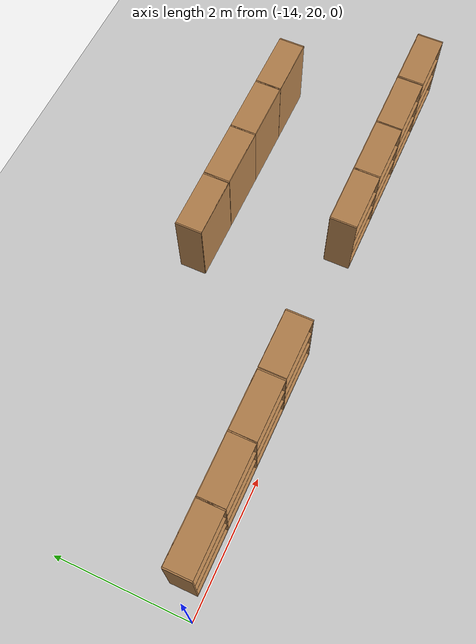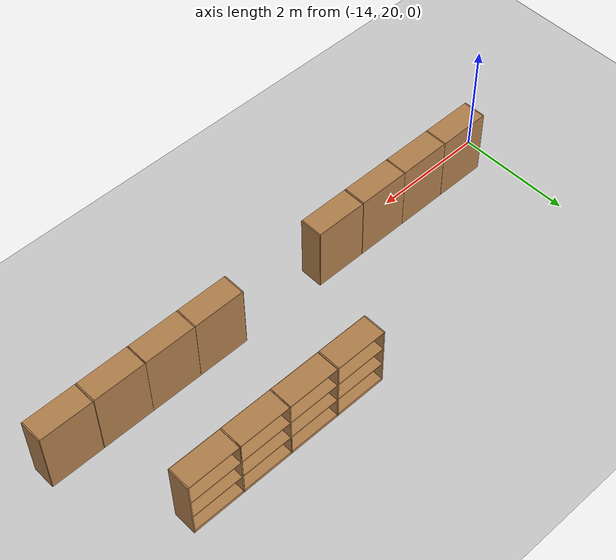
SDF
<sdf version="1.6">
 <world name="default">
  <model name="ground_plane">
   <static>1</static>
   <link name="link">
    <collision name="collision">
     <geometry><plane><normal>0 0 1</normal><size>100 100</size></plane></geometry>
     <surface><friction><ode><mu>100</mu><mu2>50</mu2></ode></friction></surface>
    </collision>
    <visual name="visual">
     <cast_shadows>0</cast_shadows>
     <geometry><plane><normal>0 0 1</normal><size>100 100</size></plane></geometry>
     <material>
      <script><uri>file://media/materials/scripts/gazebo.material</uri><name>Gazebo/Grey</name></script>
     </material>
    </visual>
   </link>
  </model>
  <model name="Bookself-4_clone">
   <model name="Bookself-3">
    <model name="bookshelf_0">
     <static>1</static>
     <link name="link">
      <inertial><mass>1</mass></inertial>
      <collision name="back">
       <pose>0 0.005 0.6 0 -0 0</pose>
       <geometry><box><size>0.9 0.01 1.2</size></box></geometry>
      </collision>
      <visual name="visual1">
       <pose>0 0.005 0.6 0 -0 0</pose>
       <geometry><box><size>0.9 0.01 1.2</size></box></geometry>
       <material>
        <script><uri>file://media/materials/scripts/gazebo.material</uri><name>Gazebo/Wood</name></script>
       </material>
      </visual>
      <collision name="left_side">
       <pose>0.45 -0.195 0.6 0 -0 0</pose>
       <geometry><box><size>0.02 0.4 1.2</size></box></geometry>
      </collision>
      <visual name="visual2">
       <pose>0.45 -0.195 0.6 0 -0 0</pose>
       <geometry><box><size>0.02 0.4 1.2</size></box></geometry>
       <material>
        <script><uri>file://media/materials/scripts/gazebo.material</uri><name>Gazebo/Wood</name></script>
       </material>
      </visual>
      <collision name="right_side">
       <pose>-0.45 -0.195 0.6 0 -0 0</pose>
       <geometry><box><size>0.02 0.4 1.2</size></box></geometry>
      </collision>
      <visual name="visual3">
       <pose>-0.45 -0.195 0.6 0 -0 0</pose>
       <geometry><box><size>0.02 0.4 1.2</size></box></geometry>
       <material>
        <script><uri>file://media/materials/scripts/gazebo.material</uri><name>Gazebo/Wood</name></script>
       </material>
      </visual>
      <collision name="bottom">
       <pose>0 -0.195 0.03 0 -0 0</pose>
       <geometry><box><size>0.88 0.4 0.06</size></box></geometry>
      </collision>
      <visual name="visual4">
       <pose>0 -0.195 0.03 0 -0 0</pose>
       <geometry><box><size>0.88 0.4 0.06</size></box></geometry>
       <material>
        <script><uri>file://media/materials/scripts/gazebo.material</uri><name>Gazebo/Wood</name></script>
       </material>
      </visual>
      <collision name="top">
       <pose>0 -0.195 1.19 0 -0 0</pose>
       <geometry><box><size>0.88 0.4 0.02</size></box></geometry>
      </collision>
      <visual name="visual5">
       <pose>0 -0.195 1.19 0 -0 0</pose>
       <geometry><box><size>0.88 0.4 0.02</size></box></geometry>
       <material>
        <script><uri>file://media/materials/scripts/gazebo.material</uri><name>Gazebo/Wood</name></script>
       </material>
      </visual>
      <collision name="low_shelf">
       <pose>0 -0.195 0.43 0 -0 0</pose>
       <geometry><box><size>0.88 0.4 0.02</size></box></geometry>
      </collision>
      <visual name="visual6">
       <pose>0 -0.195 0.43 0 -0 0</pose>
       <geometry><box><size>0.88 0.4 0.02</size></box></geometry>
       <material>
        <script><uri>file://media/materials/scripts/gazebo.material</uri><name>Gazebo/Wood</name></script>
       </material>
      </visual>
      <collision name="high_shelf">
       <pose>0 -0.195 0.8 0 -0 0</pose>
       <geometry><box><size>0.88 0.4 0.02</size></box></geometry>
      </collision>
      <visual name="visual7">
       <pose>0 -0.195 0.8 0 -0 0</pose>
       <geometry><box><size>0.88 0.4 0.02</size></box></geometry>
       <material>
        <script><uri>file://media/materials/scripts/gazebo.material</uri><name>Gazebo/Wood</name></script>
       </material>
      </visual>
     </link>
     <pose>-0.903039 0 0 0 -0 0</pose>
    </model>
    <model name="bookshelf_1">
     <static>1</static>
     <link name="link">
      <inertial><mass>1</mass></inertial>
      <collision name="back">
       <pose>0 0.005 0.6 0 -0 0</pose>
       <geometry><box><size>0.9 0.01 1.2</size></box></geometry>
      </collision>
      <visual name="visual1">
       <pose>0 0.005 0.6 0 -0 0</pose>
       <geometry><box><size>0.9 0.01 1.2</size></box></geometry>
       <material>
        <script><uri>file://media/materials/scripts/gazebo.material</uri><name>Gazebo/Wood</name></script>
       </material>
      </visual>
      <collision name="left_side">
       <pose>0.45 -0.195 0.6 0 -0 0</pose>
       <geometry><box><size>0.02 0.4 1.2</size></box></geometry>
      </collision>
      <visual name="visual2">
       <pose>0.45 -0.195 0.6 0 -0 0</pose>
       <geometry><box><size>0.02 0.4 1.2</size></box></geometry>
       <material>
        <script><uri>file://media/materials/scripts/gazebo.material</uri><name>Gazebo/Wood</name></script>
       </material>
      </visual>
      <collision name="right_side">
       <pose>-0.45 -0.195 0.6 0 -0 0</pose>
       <geometry><box><size>0.02 0.4 1.2</size></box></geometry>
      </collision>
      <visual name="visual3">
       <pose>-0.45 -0.195 0.6 0 -0 0</pose>
       <geometry><box><size>0.02 0.4 1.2</size></box></geometry>
       <material>
        <script><uri>file://media/materials/scripts/gazebo.material</uri><name>Gazebo/Wood</name></script>
       </material>
      </visual>
      <collision name="bottom">
       <pose>0 -0.195 0.03 0 -0 0</pose>
       <geometry><box><size>0.88 0.4 0.06</size></box></geometry>
      </collision>
      <visual name="visual4">
       <pose>0 -0.195 0.03 0 -0 0</pose>
       <geometry><box><size>0.88 0.4 0.06</size></box></geometry>
       <material>
        <script><uri>file://media/materials/scripts/gazebo.material</uri><name>Gazebo/Wood</name></script>
       </material>
      </visual>
      <collision name="top">
       <pose>0 -0.195 1.19 0 -0 0</pose>
       <geometry><box><size>0.88 0.4 0.02</size></box></geometry>
      </collision>
      <visual name="visual5">
       <pose>0 -0.195 1.19 0 -0 0</pose>
       <geometry><box><size>0.88 0.4 0.02</size></box></geometry>
       <material>
        <script><uri>file://media/materials/scripts/gazebo.material</uri><name>Gazebo/Wood</name></script>
       </material>
      </visual>
      <collision name="low_shelf">
       <pose>0 -0.195 0.43 0 -0 0</pose>
       <geometry><box><size>0.88 0.4 0.02</size></box></geometry>
      </collision>
      <visual name="visual6">
       <pose>0 -0.195 0.43 0 -0 0</pose>
       <geometry><box><size>0.88 0.4 0.02</size></box></geometry>
       <material>
        <script><uri>file://media/materials/scripts/gazebo.material</uri><name>Gazebo/Wood</name></script>
       </material>
      </visual>
      <collision name="high_shelf">
       <pose>0 -0.195 0.8 0 -0 0</pose>
       <geometry><box><size>0.88 0.4 0.02</size></box></geometry>
      </collision>
      <visual name="visual7">
       <pose>0 -0.195 0.8 0 -0 0</pose>
       <geometry><box><size>0.88 0.4 0.02</size></box></geometry>
       <material>
        <script><uri>file://media/materials/scripts/gazebo.material</uri><name>Gazebo/Wood</name></script>
       </material>
      </visual>
     </link>
     <pose>0.000535 0 0 0 -0 0</pose>
    </model>
    <model name="bookshelf_1_clone">
     <static>1</static>
     <link name="link">
      <inertial><mass>1</mass></inertial>
      <collision name="back">
       <pose>0 0.005 0.6 0 -0 0</pose>
       <geometry><box><size>0.9 0.01 1.2</size></box></geometry>
      </collision>
      <visual name="visual1">
       <pose>0 0.005 0.6 0 -0 0</pose>
       <geometry><box><size>0.9 0.01 1.2</size></box></geometry>
       <material>
        <script><uri>file://media/materials/scripts/gazebo.material</uri><name>Gazebo/Wood</name></script>
       </material>
      </visual>
      <collision name="left_side">
       <pose>0.45 -0.195 0.6 0 -0 0</pose>
       <geometry><box><size>0.02 0.4 1.2</size></box></geometry>
      </collision>
      <visual name="visual2">
       <pose>0.45 -0.195 0.6 0 -0 0</pose>
       <geometry><box><size>0.02 0.4 1.2</size></box></geometry>
       <material>
        <script><uri>file://media/materials/scripts/gazebo.material</uri><name>Gazebo/Wood</name></script>
       </material>
      </visual>
      <collision name="right_side">
       <pose>-0.45 -0.195 0.6 0 -0 0</pose>
       <geometry><box><size>0.02 0.4 1.2</size></box></geometry>
      </collision>
      <visual name="visual3">
       <pose>-0.45 -0.195 0.6 0 -0 0</pose>
       <geometry><box><size>0.02 0.4 1.2</size></box></geometry>
       <material>
        <script><uri>file://media/materials/scripts/gazebo.material</uri><name>Gazebo/Wood</name></script>
       </material>
      </visual>
      <collision name="bottom">
       <pose>0 -0.195 0.03 0 -0 0</pose>
       <geometry><box><size>0.88 0.4 0.06</size></box></geometry>
      </collision>
      <visual name="visual4">
       <pose>0 -0.195 0.03 0 -0 0</pose>
       <geometry><box><size>0.88 0.4 0.06</size></box></geometry>
       <material>
        <script><uri>file://media/materials/scripts/gazebo.material</uri><name>Gazebo/Wood</name></script>
       </material>
      </visual>
      <collision name="top">
       <pose>0 -0.195 1.19 0 -0 0</pose>
       <geometry><box><size>0.88 0.4 0.02</size></box></geometry>
      </collision>
      <visual name="visual5">
       <pose>0 -0.195 1.19 0 -0 0</pose>
       <geometry><box><size>0.88 0.4 0.02</size></box></geometry>
       <material>
        <script><uri>file://media/materials/scripts/gazebo.material</uri><name>Gazebo/Wood</name></script>
       </material>
      </visual>
      <collision name="low_shelf">
       <pose>0 -0.195 0.43 0 -0 0</pose>
       <geometry><box><size>0.88 0.4 0.02</size></box></geometry>
      </collision>
      <visual name="visual6">
       <pose>0 -0.195 0.43 0 -0 0</pose>
       <geometry><box><size>0.88 0.4 0.02</size></box></geometry>
       <material>
        <script><uri>file://media/materials/scripts/gazebo.material</uri><name>Gazebo/Wood</name></script>
       </material>
      </visual>
      <collision name="high_shelf">
       <pose>0 -0.195 0.8 0 -0 0</pose>
       <geometry><box><size>0.88 0.4 0.02</size></box></geometry>
      </collision>
      <visual name="visual7">
       <pose>0 -0.195 0.8 0 -0 0</pose>
       <geometry><box><size>0.88 0.4 0.02</size></box></geometry>
       <material>
        <script><uri>file://media/materials/scripts/gazebo.material</uri><name>Gazebo/Wood</name></script>
       </material>
      </visual>
     </link>
     <pose>0.902502 0 0 0 -0 0</pose>
    </model>
    <static>1</static>
    <pose>-0.906894 3e-05 0 0 -0 0</pose>
   </model>
   <model name="bookshelf">
    <static>1</static>
    <link name="link">
     <inertial><mass>1</mass></inertial>
     <collision name="back">
      <pose>0 0.005 0.6 0 -0 0</pose>
      <geometry><box><size>0.9 0.01 1.2</size></box></geometry>
     </collision>
     <visual name="visual1">
      <pose>0 0.005 0.6 0 -0 0</pose>
      <geometry><box><size>0.9 0.01 1.2</size></box></geometry>
      <material>
       <script><uri>file://media/materials/scripts/gazebo.material</uri><name>Gazebo/Wood</name></script>
      </material>
     </visual>
     <collision name="left_side">
      <pose>0.45 -0.195 0.6 0 -0 0</pose>
      <geometry><box><size>0.02 0.4 1.2</size></box></geometry>
     </collision>
     <visual name="visual2">
      <pose>0.45 -0.195 0.6 0 -0 0</pose>
      <geometry><box><size>0.02 0.4 1.2</size></box></geometry>
      <material>
       <script><uri>file://media/materials/scripts/gazebo.material</uri><name>Gazebo/Wood</name></script>
      </material>
     </visual>
     <collision name="right_side">
      <pose>-0.45 -0.195 0.6 0 -0 0</pose>
      <geometry><box><size>0.02 0.4 1.2</size></box></geometry>
     </collision>
     <visual name="visual3">
      <pose>-0.45 -0.195 0.6 0 -0 0</pose>
      <geometry><box><size>0.02 0.4 1.2</size></box></geometry>
      <material>
       <script><uri>file://media/materials/scripts/gazebo.material</uri><name>Gazebo/Wood</name></script>
      </material>
     </visual>
     <collision name="bottom">
      <pose>0 -0.195 0.03 0 -0 0</pose>
      <geometry><box><size>0.88 0.4 0.06</size></box></geometry>
     </collision>
     <visual name="visual4">
      <pose>0 -0.195 0.03 0 -0 0</pose>
      <geometry><box><size>0.88 0.4 0.06</size></box></geometry>
      <material>
       <script><uri>file://media/materials/scripts/gazebo.material</uri><name>Gazebo/Wood</name></script>
      </material>
     </visual>
     <collision name="top">
      <pose>0 -0.195 1.19 0 -0 0</pose>
      <geometry><box><size>0.88 0.4 0.02</size></box></geometry>
     </collision>
     <visual name="visual5">
      <pose>0 -0.195 1.19 0 -0 0</pose>
      <geometry><box><size>0.88 0.4 0.02</size></box></geometry>
      <material>
       <script><uri>file://media/materials/scripts/gazebo.material</uri><name>Gazebo/Wood</name></script>
      </material>
     </visual>
     <collision name="low_shelf">
      <pose>0 -0.195 0.43 0 -0 0</pose>
      <geometry><box><size>0.88 0.4 0.02</size></box></geometry>
     </collision>
     <visual name="visual6">
      <pose>0 -0.195 0.43 0 -0 0</pose>
      <geometry><box><size>0.88 0.4 0.02</size></box></geometry>
      <material>
       <script><uri>file://media/materials/scripts/gazebo.material</uri><name>Gazebo/Wood</name></script>
      </material>
     </visual>
     <collision name="high_shelf">
      <pose>0 -0.195 0.8 0 -0 0</pose>
      <geometry><box><size>0.88 0.4 0.02</size></box></geometry>
     </collision>
     <visual name="visual7">
      <pose>0 -0.195 0.8 0 -0 0</pose>
      <geometry><box><size>0.88 0.4 0.02</size></box></geometry>
      <material>
       <script><uri>file://media/materials/scripts/gazebo.material</uri><name>Gazebo/Wood</name></script>
      </material>
     </visual>
    </link>
    <pose>0.906808 3e-05 0 0 -0 0</pose>
   </model>
   <static>0</static>
   <pose>-11.4157 20.4728 0 0 -0 0</pose>
  </model>
  <model name="Bookself-4_clone_0">
   <model name="Bookself-3">
    <model name="bookshelf_0">
     <static>1</static>
     <link name="link">
      <inertial><mass>1</mass></inertial>
      <collision name="back">
       <pose>0 0.005 0.6 0 -0 0</pose>
       <geometry><box><size>0.9 0.01 1.2</size></box></geometry>
      </collision>
      <visual name="visual1">
       <pose>0 0.005 0.6 0 -0 0</pose>
       <geometry><box><size>0.9 0.01 1.2</size></box></geometry>
       <material>
        <script><uri>file://media/materials/scripts/gazebo.material</uri><name>Gazebo/Wood</name></script>
       </material>
      </visual>
      <collision name="left_side">
       <pose>0.45 -0.195 0.6 0 -0 0</pose>
       <geometry><box><size>0.02 0.4 1.2</size></box></geometry>
      </collision>
      <visual name="visual2">
       <pose>0.45 -0.195 0.6 0 -0 0</pose>
       <geometry><box><size>0.02 0.4 1.2</size></box></geometry>
       <material>
        <script><uri>file://media/materials/scripts/gazebo.material</uri><name>Gazebo/Wood</name></script>
       </material>
      </visual>
      <collision name="right_side">
       <pose>-0.45 -0.195 0.6 0 -0 0</pose>
       <geometry><box><size>0.02 0.4 1.2</size></box></geometry>
      </collision>
      <visual name="visual3">
       <pose>-0.45 -0.195 0.6 0 -0 0</pose>
       <geometry><box><size>0.02 0.4 1.2</size></box></geometry>
       <material>
        <script><uri>file://media/materials/scripts/gazebo.material</uri><name>Gazebo/Wood</name></script>
       </material>
      </visual>
      <collision name="bottom">
       <pose>0 -0.195 0.03 0 -0 0</pose>
       <geometry><box><size>0.88 0.4 0.06</size></box></geometry>
      </collision>
      <visual name="visual4">
       <pose>0 -0.195 0.03 0 -0 0</pose>
       <geometry><box><size>0.88 0.4 0.06</size></box></geometry>
       <material>
        <script><uri>file://media/materials/scripts/gazebo.material</uri><name>Gazebo/Wood</name></script>
       </material>
      </visual>
      <collision name="top">
       <pose>0 -0.195 1.19 0 -0 0</pose>
       <geometry><box><size>0.88 0.4 0.02</size></box></geometry>
      </collision>
      <visual name="visual5">
       <pose>0 -0.195 1.19 0 -0 0</pose>
       <geometry><box><size>0.88 0.4 0.02</size></box></geometry>
       <material>
        <script><uri>file://media/materials/scripts/gazebo.material</uri><name>Gazebo/Wood</name></script>
       </material>
      </visual>
      <collision name="low_shelf">
       <pose>0 -0.195 0.43 0 -0 0</pose>
       <geometry><box><size>0.88 0.4 0.02</size></box></geometry>
      </collision>
      <visual name="visual6">
       <pose>0 -0.195 0.43 0 -0 0</pose>
       <geometry><box><size>0.88 0.4 0.02</size></box></geometry>
       <material>
        <script><uri>file://media/materials/scripts/gazebo.material</uri><name>Gazebo/Wood</name></script>
       </material>
      </visual>
      <collision name="high_shelf">
       <pose>0 -0.195 0.8 0 -0 0</pose>
       <geometry><box><size>0.88 0.4 0.02</size></box></geometry>
      </collision>
      <visual name="visual7">
       <pose>0 -0.195 0.8 0 -0 0</pose>
       <geometry><box><size>0.88 0.4 0.02</size></box></geometry>
       <material>
        <script><uri>file://media/materials/scripts/gazebo.material</uri><name>Gazebo/Wood</name></script>
       </material>
      </visual>
     </link>
     <pose>-0.903039 0 0 0 -0 0</pose>
    </model>
    <model name="bookshelf_1">
     <static>1</static>
     <link name="link">
      <inertial><mass>1</mass></inertial>
      <collision name="back">
       <pose>0 0.005 0.6 0 -0 0</pose>
       <geometry><box><size>0.9 0.01 1.2</size></box></geometry>
      </collision>
      <visual name="visual1">
       <pose>0 0.005 0.6 0 -0 0</pose>
       <geometry><box><size>0.9 0.01 1.2</size></box></geometry>
       <material>
        <script><uri>file://media/materials/scripts/gazebo.material</uri><name>Gazebo/Wood</name></script>
       </material>
      </visual>
      <collision name="left_side">
       <pose>0.45 -0.195 0.6 0 -0 0</pose>
       <geometry><box><size>0.02 0.4 1.2</size></box></geometry>
      </collision>
      <visual name="visual2">
       <pose>0.45 -0.195 0.6 0 -0 0</pose>
       <geometry><box><size>0.02 0.4 1.2</size></box></geometry>
       <material>
        <script><uri>file://media/materials/scripts/gazebo.material</uri><name>Gazebo/Wood</name></script>
       </material>
      </visual>
      <collision name="right_side">
       <pose>-0.45 -0.195 0.6 0 -0 0</pose>
       <geometry><box><size>0.02 0.4 1.2</size></box></geometry>
      </collision>
      <visual name="visual3">
       <pose>-0.45 -0.195 0.6 0 -0 0</pose>
       <geometry><box><size>0.02 0.4 1.2</size></box></geometry>
       <material>
        <script><uri>file://media/materials/scripts/gazebo.material</uri><name>Gazebo/Wood</name></script>
       </material>
      </visual>
      <collision name="bottom">
       <pose>0 -0.195 0.03 0 -0 0</pose>
       <geometry><box><size>0.88 0.4 0.06</size></box></geometry>
      </collision>
      <visual name="visual4">
       <pose>0 -0.195 0.03 0 -0 0</pose>
       <geometry><box><size>0.88 0.4 0.06</size></box></geometry>
       <material>
        <script><uri>file://media/materials/scripts/gazebo.material</uri><name>Gazebo/Wood</name></script>
       </material>
      </visual>
      <collision name="top">
       <pose>0 -0.195 1.19 0 -0 0</pose>
       <geometry><box><size>0.88 0.4 0.02</size></box></geometry>
      </collision>
      <visual name="visual5">
       <pose>0 -0.195 1.19 0 -0 0</pose>
       <geometry><box><size>0.88 0.4 0.02</size></box></geometry>
       <material>
        <script><uri>file://media/materials/scripts/gazebo.material</uri><name>Gazebo/Wood</name></script>
       </material>
      </visual>
      <collision name="low_shelf">
       <pose>0 -0.195 0.43 0 -0 0</pose>
       <geometry><box><size>0.88 0.4 0.02</size></box></geometry>
      </collision>
      <visual name="visual6">
       <pose>0 -0.195 0.43 0 -0 0</pose>
       <geometry><box><size>0.88 0.4 0.02</size></box></geometry>
       <material>
        <script><uri>file://media/materials/scripts/gazebo.material</uri><name>Gazebo/Wood</name></script>
       </material>
      </visual>
      <collision name="high_shelf">
       <pose>0 -0.195 0.8 0 -0 0</pose>
       <geometry><box><size>0.88 0.4 0.02</size></box></geometry>
      </collision>
      <visual name="visual7">
       <pose>0 -0.195 0.8 0 -0 0</pose>
       <geometry><box><size>0.88 0.4 0.02</size></box></geometry>
       <material>
        <script><uri>file://media/materials/scripts/gazebo.material</uri><name>Gazebo/Wood</name></script>
       </material>
      </visual>
     </link>
     <pose>0.000535 0 0 0 -0 0</pose>
    </model>
    <model name="bookshelf_1_clone">
     <static>1</static>
     <link name="link">
      <inertial><mass>1</mass></inertial>
      <collision name="back">
       <pose>0 0.005 0.6 0 -0 0</pose>
       <geometry><box><size>0.9 0.01 1.2</size></box></geometry>
      </collision>
      <visual name="visual1">
       <pose>0 0.005 0.6 0 -0 0</pose>
       <geometry><box><size>0.9 0.01 1.2</size></box></geometry>
       <material>
        <script><uri>file://media/materials/scripts/gazebo.material</uri><name>Gazebo/Wood</name></script>
       </material>
      </visual>
      <collision name="left_side">
       <pose>0.45 -0.195 0.6 0 -0 0</pose>
       <geometry><box><size>0.02 0.4 1.2</size></box></geometry>
      </collision>
      <visual name="visual2">
       <pose>0.45 -0.195 0.6 0 -0 0</pose>
       <geometry><box><size>0.02 0.4 1.2</size></box></geometry>
       <material>
        <script><uri>file://media/materials/scripts/gazebo.material</uri><name>Gazebo/Wood</name></script>
       </material>
      </visual>
      <collision name="right_side">
       <pose>-0.45 -0.195 0.6 0 -0 0</pose>
       <geometry><box><size>0.02 0.4 1.2</size></box></geometry>
      </collision>
      <visual name="visual3">
       <pose>-0.45 -0.195 0.6 0 -0 0</pose>
       <geometry><box><size>0.02 0.4 1.2</size></box></geometry>
       <material>
        <script><uri>file://media/materials/scripts/gazebo.material</uri><name>Gazebo/Wood</name></script>
       </material>
      </visual>
      <collision name="bottom">
       <pose>0 -0.195 0.03 0 -0 0</pose>
       <geometry><box><size>0.88 0.4 0.06</size></box></geometry>
      </collision>
      <visual name="visual4">
       <pose>0 -0.195 0.03 0 -0 0</pose>
       <geometry><box><size>0.88 0.4 0.06</size></box></geometry>
       <material>
        <script><uri>file://media/materials/scripts/gazebo.material</uri><name>Gazebo/Wood</name></script>
       </material>
      </visual>
      <collision name="top">
       <pose>0 -0.195 1.19 0 -0 0</pose>
       <geometry><box><size>0.88 0.4 0.02</size></box></geometry>
      </collision>
      <visual name="visual5">
       <pose>0 -0.195 1.19 0 -0 0</pose>
       <geometry><box><size>0.88 0.4 0.02</size></box></geometry>
       <material>
        <script><uri>file://media/materials/scripts/gazebo.material</uri><name>Gazebo/Wood</name></script>
       </material>
      </visual>
      <collision name="low_shelf">
       <pose>0 -0.195 0.43 0 -0 0</pose>
       <geometry><box><size>0.88 0.4 0.02</size></box></geometry>
      </collision>
      <visual name="visual6">
       <pose>0 -0.195 0.43 0 -0 0</pose>
       <geometry><box><size>0.88 0.4 0.02</size></box></geometry>
       <material>
        <script><uri>file://media/materials/scripts/gazebo.material</uri><name>Gazebo/Wood</name></script>
       </material>
      </visual>
      <collision name="high_shelf">
       <pose>0 -0.195 0.8 0 -0 0</pose>
       <geometry><box><size>0.88 0.4 0.02</size></box></geometry>
      </collision>
      <visual name="visual7">
       <pose>0 -0.195 0.8 0 -0 0</pose>
       <geometry><box><size>0.88 0.4 0.02</size></box></geometry>
       <material>
        <script><uri>file://media/materials/scripts/gazebo.material</uri><name>Gazebo/Wood</name></script>
       </material>
      </visual>
     </link>
     <pose>0.902502 0 0 0 -0 0</pose>
    </model>
    <static>1</static>
    <pose>-0.906894 3e-05 0 0 -0 0</pose>
   </model>
   <model name="bookshelf">
    <static>1</static>
    <link name="link">
     <inertial><mass>1</mass></inertial>
     <collision name="back">
      <pose>0 0.005 0.6 0 -0 0</pose>
      <geometry><box><size>0.9 0.01 1.2</size></box></geometry>
     </collision>
     <visual name="visual1">
      <pose>0 0.005 0.6 0 -0 0</pose>
      <geometry><box><size>0.9 0.01 1.2</size></box></geometry>
      <material>
       <script><uri>file://media/materials/scripts/gazebo.material</uri><name>Gazebo/Wood</name></script>
      </material>
     </visual>
     <collision name="left_side">
      <pose>0.45 -0.195 0.6 0 -0 0</pose>
      <geometry><box><size>0.02 0.4 1.2</size></box></geometry>
     </collision>
     <visual name="visual2">
      <pose>0.45 -0.195 0.6 0 -0 0</pose>
      <geometry><box><size>0.02 0.4 1.2</size></box></geometry>
      <material>
       <script><uri>file://media/materials/scripts/gazebo.material</uri><name>Gazebo/Wood</name></script>
      </material>
     </visual>
     <collision name="right_side">
      <pose>-0.45 -0.195 0.6 0 -0 0</pose>
      <geometry><box><size>0.02 0.4 1.2</size></box></geometry>
     </collision>
     <visual name="visual3">
      <pose>-0.45 -0.195 0.6 0 -0 0</pose>
      <geometry><box><size>0.02 0.4 1.2</size></box></geometry>
      <material>
       <script><uri>file://media/materials/scripts/gazebo.material</uri><name>Gazebo/Wood</name></script>
      </material>
     </visual>
     <collision name="bottom">
      <pose>0 -0.195 0.03 0 -0 0</pose>
      <geometry><box><size>0.88 0.4 0.06</size></box></geometry>
     </collision>
     <visual name="visual4">
      <pose>0 -0.195 0.03 0 -0 0</pose>
      <geometry><box><size>0.88 0.4 0.06</size></box></geometry>
      <material>
       <script><uri>file://media/materials/scripts/gazebo.material</uri><name>Gazebo/Wood</name></script>
      </material>
     </visual>
     <collision name="top">
      <pose>0 -0.195 1.19 0 -0 0</pose>
      <geometry><box><size>0.88 0.4 0.02</size></box></geometry>
     </collision>
     <visual name="visual5">
      <pose>0 -0.195 1.19 0 -0 0</pose>
      <geometry><box><size>0.88 0.4 0.02</size></box></geometry>
      <material>
       <script><uri>file://media/materials/scripts/gazebo.material</uri><name>Gazebo/Wood</name></script>
      </material>
     </visual>
     <collision name="low_shelf">
      <pose>0 -0.195 0.43 0 -0 0</pose>
      <geometry><box><size>0.88 0.4 0.02</size></box></geometry>
     </collision>
     <visual name="visual6">
      <pose>0 -0.195 0.43 0 -0 0</pose>
      <geometry><box><size>0.88 0.4 0.02</size></box></geometry>
      <material>
       <script><uri>file://media/materials/scripts/gazebo.material</uri><name>Gazebo/Wood</name></script>
      </material>
     </visual>
     <collision name="high_shelf">
      <pose>0 -0.195 0.8 0 -0 0</pose>
      <geometry><box><size>0.88 0.4 0.02</size></box></geometry>
     </collision>
     <visual name="visual7">
      <pose>0 -0.195 0.8 0 -0 0</pose>
      <geometry><box><size>0.88 0.4 0.02</size></box></geometry>
      <material>
       <script><uri>file://media/materials/scripts/gazebo.material</uri><name>Gazebo/Wood</name></script>
      </material>
     </visual>
    </link>
    <pose>0.906808 3e-05 0 0 -0 0</pose>
   </model>
   <static>0</static>
   <pose>-6.25819 20.4728 0 0 -0 0</pose>
  </model>
  <model name="Bookself-4_clone_0_clone_5_clone_1">
   <model name="Bookself-3">
    <model name="bookshelf_0">
     <static>1</static>
     <link name="link">
      <inertial><mass>1</mass></inertial>
      <collision name="back">
       <pose>0 0.005 0.6 0 -0 0</pose>
       <geometry><box><size>0.9 0.01 1.2</size></box></geometry>
      </collision>
      <visual name="visual1">
       <pose>0 0.005 0.6 0 -0 0</pose>
       <geometry><box><size>0.9 0.01 1.2</size></box></geometry>
       <material>
        <script><uri>file://media/materials/scripts/gazebo.material</uri><name>Gazebo/Wood</name></script>
       </material>
      </visual>
      <collision name="left_side">
       <pose>0.45 -0.195 0.6 0 -0 0</pose>
       <geometry><box><size>0.02 0.4 1.2</size></box></geometry>
      </collision>
      <visual name="visual2">
       <pose>0.45 -0.195 0.6 0 -0 0</pose>
       <geometry><box><size>0.02 0.4 1.2</size></box></geometry>
       <material>
        <script><uri>file://media/materials/scripts/gazebo.material</uri><name>Gazebo/Wood</name></script>
       </material>
      </visual>
      <collision name="right_side">
       <pose>-0.45 -0.195 0.6 0 -0 0</pose>
       <geometry><box><size>0.02 0.4 1.2</size></box></geometry>
      </collision>
      <visual name="visual3">
       <pose>-0.45 -0.195 0.6 0 -0 0</pose>
       <geometry><box><size>0.02 0.4 1.2</size></box></geometry>
       <material>
        <script><uri>file://media/materials/scripts/gazebo.material</uri><name>Gazebo/Wood</name></script>
       </material>
      </visual>
      <collision name="bottom">
       <pose>0 -0.195 0.03 0 -0 0</pose>
       <geometry><box><size>0.88 0.4 0.06</size></box></geometry>
      </collision>
      <visual name="visual4">
       <pose>0 -0.195 0.03 0 -0 0</pose>
       <geometry><box><size>0.88 0.4 0.06</size></box></geometry>
       <material>
        <script><uri>file://media/materials/scripts/gazebo.material</uri><name>Gazebo/Wood</name></script>
       </material>
      </visual>
      <collision name="top">
       <pose>0 -0.195 1.19 0 -0 0</pose>
       <geometry><box><size>0.88 0.4 0.02</size></box></geometry>
      </collision>
      <visual name="visual5">
       <pose>0 -0.195 1.19 0 -0 0</pose>
       <geometry><box><size>0.88 0.4 0.02</size></box></geometry>
       <material>
        <script><uri>file://media/materials/scripts/gazebo.material</uri><name>Gazebo/Wood</name></script>
       </material>
      </visual>
      <collision name="low_shelf">
       <pose>0 -0.195 0.43 0 -0 0</pose>
       <geometry><box><size>0.88 0.4 0.02</size></box></geometry>
      </collision>
      <visual name="visual6">
       <pose>0 -0.195 0.43 0 -0 0</pose>
       <geometry><box><size>0.88 0.4 0.02</size></box></geometry>
       <material>
        <script><uri>file://media/materials/scripts/gazebo.material</uri><name>Gazebo/Wood</name></script>
       </material>
      </visual>
      <collision name="high_shelf">
       <pose>0 -0.195 0.8 0 -0 0</pose>
       <geometry><box><size>0.88 0.4 0.02</size></box></geometry>
      </collision>
      <visual name="visual7">
       <pose>0 -0.195 0.8 0 -0 0</pose>
       <geometry><box><size>0.88 0.4 0.02</size></box></geometry>
       <material>
        <script><uri>file://media/materials/scripts/gazebo.material</uri><name>Gazebo/Wood</name></script>
       </material>
      </visual>
     </link>
     <pose>-0.903039 0 0 0 -0 0</pose>
    </model>
    <model name="bookshelf_1">
     <static>1</static>
     <link name="link">
      <inertial><mass>1</mass></inertial>
      <collision name="back">
       <pose>0 0.005 0.6 0 -0 0</pose>
       <geometry><box><size>0.9 0.01 1.2</size></box></geometry>
      </collision>
      <visual name="visual1">
       <pose>0 0.005 0.6 0 -0 0</pose>
       <geometry><box><size>0.9 0.01 1.2</size></box></geometry>
       <material>
        <script><uri>file://media/materials/scripts/gazebo.material</uri><name>Gazebo/Wood</name></script>
       </material>
      </visual>
      <collision name="left_side">
       <pose>0.45 -0.195 0.6 0 -0 0</pose>
       <geometry><box><size>0.02 0.4 1.2</size></box></geometry>
      </collision>
      <visual name="visual2">
       <pose>0.45 -0.195 0.6 0 -0 0</pose>
       <geometry><box><size>0.02 0.4 1.2</size></box></geometry>
       <material>
        <script><uri>file://media/materials/scripts/gazebo.material</uri><name>Gazebo/Wood</name></script>
       </material>
      </visual>
      <collision name="right_side">
       <pose>-0.45 -0.195 0.6 0 -0 0</pose>
       <geometry><box><size>0.02 0.4 1.2</size></box></geometry>
      </collision>
      <visual name="visual3">
       <pose>-0.45 -0.195 0.6 0 -0 0</pose>
       <geometry><box><size>0.02 0.4 1.2</size></box></geometry>
       <material>
        <script><uri>file://media/materials/scripts/gazebo.material</uri><name>Gazebo/Wood</name></script>
       </material>
      </visual>
      <collision name="bottom">
       <pose>0 -0.195 0.03 0 -0 0</pose>
       <geometry><box><size>0.88 0.4 0.06</size></box></geometry>
      </collision>
      <visual name="visual4">
       <pose>0 -0.195 0.03 0 -0 0</pose>
       <geometry><box><size>0.88 0.4 0.06</size></box></geometry>
       <material>
        <script><uri>file://media/materials/scripts/gazebo.material</uri><name>Gazebo/Wood</name></script>
       </material>
      </visual>
      <collision name="top">
       <pose>0 -0.195 1.19 0 -0 0</pose>
       <geometry><box><size>0.88 0.4 0.02</size></box></geometry>
      </collision>
      <visual name="visual5">
       <pose>0 -0.195 1.19 0 -0 0</pose>
       <geometry><box><size>0.88 0.4 0.02</size></box></geometry>
       <material>
        <script><uri>file://media/materials/scripts/gazebo.material</uri><name>Gazebo/Wood</name></script>
       </material>
      </visual>
      <collision name="low_shelf">
       <pose>0 -0.195 0.43 0 -0 0</pose>
       <geometry><box><size>0.88 0.4 0.02</size></box></geometry>
      </collision>
      <visual name="visual6">
       <pose>0 -0.195 0.43 0 -0 0</pose>
       <geometry><box><size>0.88 0.4 0.02</size></box></geometry>
       <material>
        <script><uri>file://media/materials/scripts/gazebo.material</uri><name>Gazebo/Wood</name></script>
       </material>
      </visual>
      <collision name="high_shelf">
       <pose>0 -0.195 0.8 0 -0 0</pose>
       <geometry><box><size>0.88 0.4 0.02</size></box></geometry>
      </collision>
      <visual name="visual7">
       <pose>0 -0.195 0.8 0 -0 0</pose>
       <geometry><box><size>0.88 0.4 0.02</size></box></geometry>
       <material>
        <script><uri>file://media/materials/scripts/gazebo.material</uri><name>Gazebo/Wood</name></script>
       </material>
      </visual>
     </link>
     <pose>0.000535 0 0 0 -0 0</pose>
    </model>
    <model name="bookshelf_1_clone">
     <static>1</static>
     <link name="link">
      <inertial><mass>1</mass></inertial>
      <collision name="back">
       <pose>0 0.005 0.6 0 -0 0</pose>
       <geometry><box><size>0.9 0.01 1.2</size></box></geometry>
      </collision>
      <visual name="visual1">
       <pose>0 0.005 0.6 0 -0 0</pose>
       <geometry><box><size>0.9 0.01 1.2</size></box></geometry>
       <material>
        <script><uri>file://media/materials/scripts/gazebo.material</uri><name>Gazebo/Wood</name></script>
       </material>
      </visual>
      <collision name="left_side">
       <pose>0.45 -0.195 0.6 0 -0 0</pose>
       <geometry><box><size>0.02 0.4 1.2</size></box></geometry>
      </collision>
      <visual name="visual2">
       <pose>0.45 -0.195 0.6 0 -0 0</pose>
       <geometry><box><size>0.02 0.4 1.2</size></box></geometry>
       <material>
        <script><uri>file://media/materials/scripts/gazebo.material</uri><name>Gazebo/Wood</name></script>
       </material>
      </visual>
      <collision name="right_side">
       <pose>-0.45 -0.195 0.6 0 -0 0</pose>
       <geometry><box><size>0.02 0.4 1.2</size></box></geometry>
      </collision>
      <visual name="visual3">
       <pose>-0.45 -0.195 0.6 0 -0 0</pose>
       <geometry><box><size>0.02 0.4 1.2</size></box></geometry>
       <material>
        <script><uri>file://media/materials/scripts/gazebo.material</uri><name>Gazebo/Wood</name></script>
       </material>
      </visual>
      <collision name="bottom">
       <pose>0 -0.195 0.03 0 -0 0</pose>
       <geometry><box><size>0.88 0.4 0.06</size></box></geometry>
      </collision>
      <visual name="visual4">
       <pose>0 -0.195 0.03 0 -0 0</pose>
       <geometry><box><size>0.88 0.4 0.06</size></box></geometry>
       <material>
        <script><uri>file://media/materials/scripts/gazebo.material</uri><name>Gazebo/Wood</name></script>
       </material>
      </visual>
      <collision name="top">
       <pose>0 -0.195 1.19 0 -0 0</pose>
       <geometry><box><size>0.88 0.4 0.02</size></box></geometry>
      </collision>
      <visual name="visual5">
       <pose>0 -0.195 1.19 0 -0 0</pose>
       <geometry><box><size>0.88 0.4 0.02</size></box></geometry>
       <material>
        <script><uri>file://media/materials/scripts/gazebo.material</uri><name>Gazebo/Wood</name></script>
       </material>
      </visual>
      <collision name="low_shelf">
       <pose>0 -0.195 0.43 0 -0 0</pose>
       <geometry><box><size>0.88 0.4 0.02</size></box></geometry>
      </collision>
      <visual name="visual6">
       <pose>0 -0.195 0.43 0 -0 0</pose>
       <geometry><box><size>0.88 0.4 0.02</size></box></geometry>
       <material>
        <script><uri>file://media/materials/scripts/gazebo.material</uri><name>Gazebo/Wood</name></script>
       </material>
      </visual>
      <collision name="high_shelf">
       <pose>0 -0.195 0.8 0 -0 0</pose>
       <geometry><box><size>0.88 0.4 0.02</size></box></geometry>
      </collision>
      <visual name="visual7">
       <pose>0 -0.195 0.8 0 -0 0</pose>
       <geometry><box><size>0.88 0.4 0.02</size></box></geometry>
       <material>
        <script><uri>file://media/materials/scripts/gazebo.material</uri><name>Gazebo/Wood</name></script>
       </material>
      </visual>
     </link>
     <pose>0.902502 0 0 0 -0 0</pose>
    </model>
    <static>1</static>
    <pose>-0.906894 3e-05 0 0 -0 0</pose>
   </model>
   <model name="bookshelf">
    <static>1</static>
    <link name="link">
     <inertial><mass>1</mass></inertial>
     <collision name="back">
      <pose>0 0.005 0.6 0 -0 0</pose>
      <geometry><box><size>0.9 0.01 1.2</size></box></geometry>
     </collision>
     <visual name="visual1">
      <pose>0 0.005 0.6 0 -0 0</pose>
      <geometry><box><size>0.9 0.01 1.2</size></box></geometry>
      <material>
       <script><uri>file://media/materials/scripts/gazebo.material</uri><name>Gazebo/Wood</name></script>
      </material>
     </visual>
     <collision name="left_side">
      <pose>0.45 -0.195 0.6 0 -0 0</pose>
      <geometry><box><size>0.02 0.4 1.2</size></box></geometry>
     </collision>
     <visual name="visual2">
      <pose>0.45 -0.195 0.6 0 -0 0</pose>
      <geometry><box><size>0.02 0.4 1.2</size></box></geometry>
      <material>
       <script><uri>file://media/materials/scripts/gazebo.material</uri><name>Gazebo/Wood</name></script>
      </material>
     </visual>
     <collision name="right_side">
      <pose>-0.45 -0.195 0.6 0 -0 0</pose>
      <geometry><box><size>0.02 0.4 1.2</size></box></geometry>
     </collision>
     <visual name="visual3">
      <pose>-0.45 -0.195 0.6 0 -0 0</pose>
      <geometry><box><size>0.02 0.4 1.2</size></box></geometry>
      <material>
       <script><uri>file://media/materials/scripts/gazebo.material</uri><name>Gazebo/Wood</name></script>
      </material>
     </visual>
     <collision name="bottom">
      <pose>0 -0.195 0.03 0 -0 0</pose>
      <geometry><box><size>0.88 0.4 0.06</size></box></geometry>
     </collision>
     <visual name="visual4">
      <pose>0 -0.195 0.03 0 -0 0</pose>
      <geometry><box><size>0.88 0.4 0.06</size></box></geometry>
      <material>
       <script><uri>file://media/materials/scripts/gazebo.material</uri><name>Gazebo/Wood</name></script>
      </material>
     </visual>
     <collision name="top">
      <pose>0 -0.195 1.19 0 -0 0</pose>
      <geometry><box><size>0.88 0.4 0.02</size></box></geometry>
     </collision>
     <visual name="visual5">
      <pose>0 -0.195 1.19 0 -0 0</pose>
      <geometry><box><size>0.88 0.4 0.02</size></box></geometry>
      <material>
       <script><uri>file://media/materials/scripts/gazebo.material</uri><name>Gazebo/Wood</name></script>
      </material>
     </visual>
     <collision name="low_shelf">
      <pose>0 -0.195 0.43 0 -0 0</pose>
      <geometry><box><size>0.88 0.4 0.02</size></box></geometry>
     </collision>
     <visual name="visual6">
      <pose>0 -0.195 0.43 0 -0 0</pose>
      <geometry><box><size>0.88 0.4 0.02</size></box></geometry>
      <material>
       <script><uri>file://media/materials/scripts/gazebo.material</uri><name>Gazebo/Wood</name></script>
      </material>
     </visual>
     <collision name="high_shelf">
      <pose>0 -0.195 0.8 0 -0 0</pose>
      <geometry><box><size>0.88 0.4 0.02</size></box></geometry>
     </collision>
     <visual name="visual7">
      <pose>0 -0.195 0.8 0 -0 0</pose>
      <geometry><box><size>0.88 0.4 0.02</size></box></geometry>
      <material>
       <script><uri>file://media/materials/scripts/gazebo.material</uri><name>Gazebo/Wood</name></script>
      </material>
     </visual>
    </link>
    <pose>0.906808 3e-05 0 0 -0 0</pose>
   </model>
   <static>0</static>
   <pose>-8.12289 22.0017 0 0 -0 3.14159</pose>
  </model>
 </world>
</sdf>
